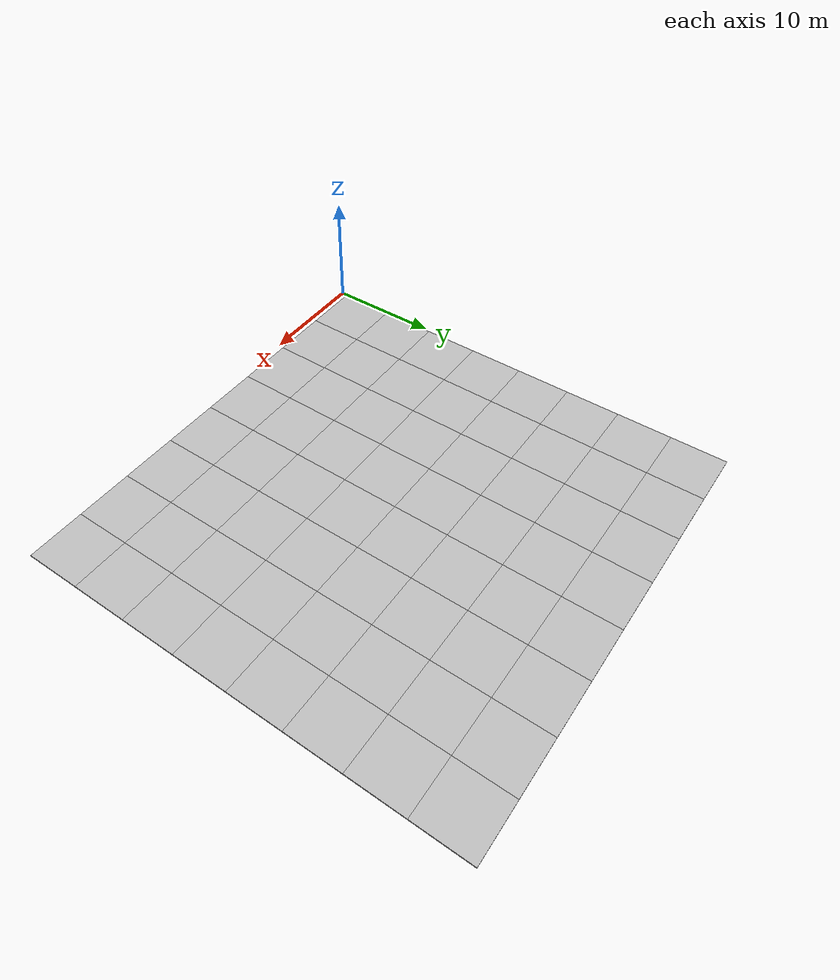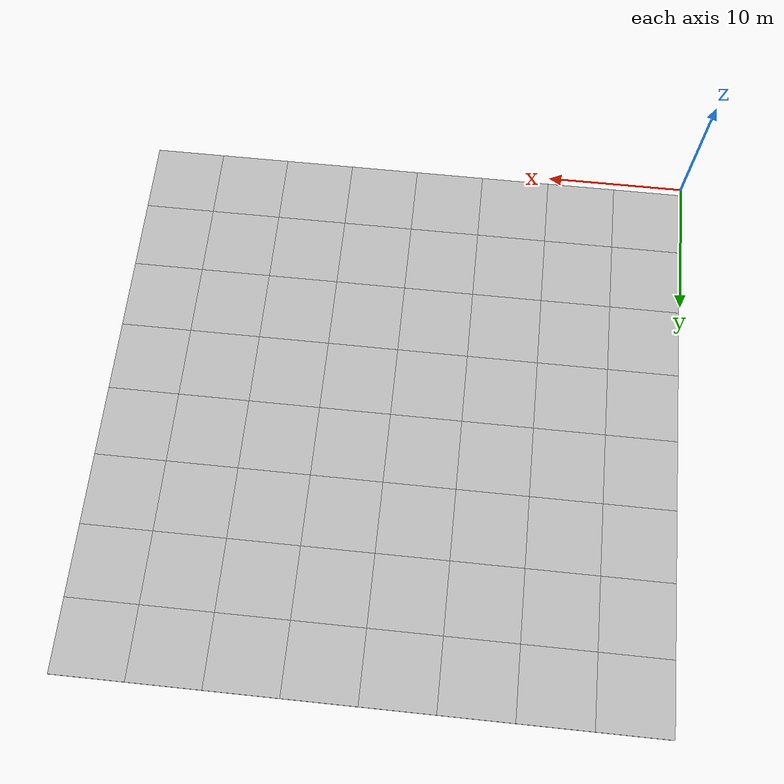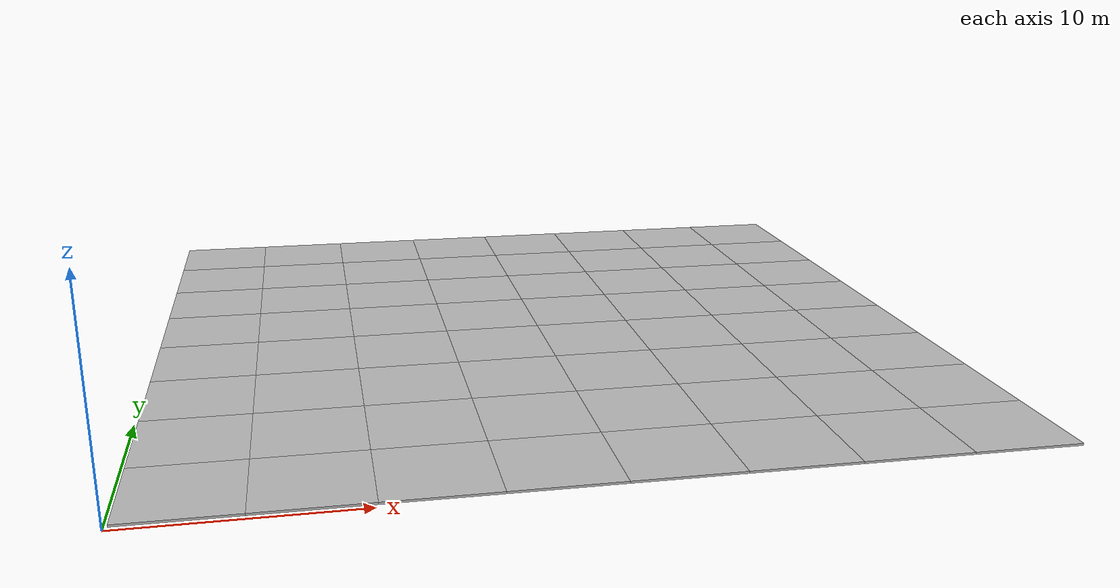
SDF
<sdf version="1.7">
 <world name="default">
  <model name="mud_plane_80x80">
   <model name="mud_plane_40x40_2">
    <model name="mud_plane_20x20">
     <model name="mud_plane">
      <static>1</static>
      <link name="link">
       <collision name="collision"><geometry><box><size>10 10 0.1</size></box></geometry></collision>
       <visual name="visual_1">
        <pose>-2.5 2.5 -0.05 0 -0 0</pose>
        <cast_shadows>0</cast_shadows>
        <geometry><box><size>5 5 0.1</size></box></geometry>
        <material>
         <script>
          <uri>model://mud_plane/materials/scripts</uri>
          <uri>model://mud_plane/materials/textures</uri>
          <name>vrc/mud</name>
         </script>
        </material>
       </visual>
       <visual name="visual_2">
        <pose>2.5 2.5 -0.05 0 -0 0</pose>
        <cast_shadows>0</cast_shadows>
        <geometry><box><size>5 5 0.1</size></box></geometry>
        <material>
         <script>
          <uri>model://mud_plane/materials/scripts</uri>
          <uri>model://mud_plane/materials/textures</uri>
          <name>vrc/mud</name>
         </script>
        </material>
       </visual>
       <visual name="visual_3">
        <pose>2.5 -2.5 -0.05 0 -0 0</pose>
        <cast_shadows>0</cast_shadows>
        <geometry><box><size>5 5 0.1</size></box></geometry>
        <material>
         <script>
          <uri>model://mud_plane/materials/scripts</uri>
          <uri>model://mud_plane/materials/textures</uri>
          <name>vrc/mud</name>
         </script>
        </material>
       </visual>
       <visual name="visual_4">
        <pose>-2.5 -2.5 -0.05 0 -0 0</pose>
        <cast_shadows>0</cast_shadows>
        <geometry><box><size>5 5 0.1</size></box></geometry>
        <material>
         <script>
          <uri>model://mud_plane/materials/scripts</uri>
          <uri>model://mud_plane/materials/textures</uri>
          <name>vrc/mud</name>
         </script>
        </material>
       </visual>
      </link>
      <pose>-4.99986 -4.99991 0 0 -0 0</pose>
     </model>
     <model name="mud_plane_0">
      <static>1</static>
      <link name="link">
       <collision name="collision"><geometry><box><size>10 10 0.1</size></box></geometry></collision>
       <visual name="visual_1">
        <pose>-2.5 2.5 -0.05 0 -0 0</pose>
        <cast_shadows>0</cast_shadows>
        <geometry><box><size>5 5 0.1</size></box></geometry>
        <material>
         <script>
          <uri>model://mud_plane/materials/scripts</uri>
          <uri>model://mud_plane/materials/textures</uri>
          <name>vrc/mud</name>
         </script>
        </material>
       </visual>
       <visual name="visual_2">
        <pose>2.5 2.5 -0.05 0 -0 0</pose>
        <cast_shadows>0</cast_shadows>
        <geometry><box><size>5 5 0.1</size></box></geometry>
        <material>
         <script>
          <uri>model://mud_plane/materials/scripts</uri>
          <uri>model://mud_plane/materials/textures</uri>
          <name>vrc/mud</name>
         </script>
        </material>
       </visual>
       <visual name="visual_3">
        <pose>2.5 -2.5 -0.05 0 -0 0</pose>
        <cast_shadows>0</cast_shadows>
        <geometry><box><size>5 5 0.1</size></box></geometry>
        <material>
         <script>
          <uri>model://mud_plane/materials/scripts</uri>
          <uri>model://mud_plane/materials/textures</uri>
          <name>vrc/mud</name>
         </script>
        </material>
       </visual>
       <visual name="visual_4">
        <pose>-2.5 -2.5 -0.05 0 -0 0</pose>
        <cast_shadows>0</cast_shadows>
        <geometry><box><size>5 5 0.1</size></box></geometry>
        <material>
         <script>
          <uri>model://mud_plane/materials/scripts</uri>
          <uri>model://mud_plane/materials/textures</uri>
          <name>vrc/mud</name>
         </script>
        </material>
       </visual>
      </link>
      <pose>-4.99946 4.99954 0 0 -0 0</pose>
     </model>
     <model name="mud_plane_1">
      <static>1</static>
      <link name="link">
       <collision name="collision"><geometry><box><size>10 10 0.1</size></box></geometry></collision>
       <visual name="visual_1">
        <pose>-2.5 2.5 -0.05 0 -0 0</pose>
        <cast_shadows>0</cast_shadows>
        <geometry><box><size>5 5 0.1</size></box></geometry>
        <material>
         <script>
          <uri>model://mud_plane/materials/scripts</uri>
          <uri>model://mud_plane/materials/textures</uri>
          <name>vrc/mud</name>
         </script>
        </material>
       </visual>
       <visual name="visual_2">
        <pose>2.5 2.5 -0.05 0 -0 0</pose>
        <cast_shadows>0</cast_shadows>
        <geometry><box><size>5 5 0.1</size></box></geometry>
        <material>
         <script>
          <uri>model://mud_plane/materials/scripts</uri>
          <uri>model://mud_plane/materials/textures</uri>
          <name>vrc/mud</name>
         </script>
        </material>
       </visual>
       <visual name="visual_3">
        <pose>2.5 -2.5 -0.05 0 -0 0</pose>
        <cast_shadows>0</cast_shadows>
        <geometry><box><size>5 5 0.1</size></box></geometry>
        <material>
         <script>
          <uri>model://mud_plane/materials/scripts</uri>
          <uri>model://mud_plane/materials/textures</uri>
          <name>vrc/mud</name>
         </script>
        </material>
       </visual>
       <visual name="visual_4">
        <pose>-2.5 -2.5 -0.05 0 -0 0</pose>
        <cast_shadows>0</cast_shadows>
        <geometry><box><size>5 5 0.1</size></box></geometry>
        <material>
         <script>
          <uri>model://mud_plane/materials/scripts</uri>
          <uri>model://mud_plane/materials/textures</uri>
          <name>vrc/mud</name>
         </script>
        </material>
       </visual>
      </link>
      <pose>4.99964 -4.99949 0 0 -0 0</pose>
     </model>
     <model name="mud_plane_2">
      <static>1</static>
      <link name="link">
       <collision name="collision"><geometry><box><size>10 10 0.1</size></box></geometry></collision>
       <visual name="visual_1">
        <pose>-2.5 2.5 -0.05 0 -0 0</pose>
        <cast_shadows>0</cast_shadows>
        <geometry><box><size>5 5 0.1</size></box></geometry>
        <material>
         <script>
          <uri>model://mud_plane/materials/scripts</uri>
          <uri>model://mud_plane/materials/textures</uri>
          <name>vrc/mud</name>
         </script>
        </material>
       </visual>
       <visual name="visual_2">
        <pose>2.5 2.5 -0.05 0 -0 0</pose>
        <cast_shadows>0</cast_shadows>
        <geometry><box><size>5 5 0.1</size></box></geometry>
        <material>
         <script>
          <uri>model://mud_plane/materials/scripts</uri>
          <uri>model://mud_plane/materials/textures</uri>
          <name>vrc/mud</name>
         </script>
        </material>
       </visual>
       <visual name="visual_3">
        <pose>2.5 -2.5 -0.05 0 -0 0</pose>
        <cast_shadows>0</cast_shadows>
        <geometry><box><size>5 5 0.1</size></box></geometry>
        <material>
         <script>
          <uri>model://mud_plane/materials/scripts</uri>
          <uri>model://mud_plane/materials/textures</uri>
          <name>vrc/mud</name>
         </script>
        </material>
       </visual>
       <visual name="visual_4">
        <pose>-2.5 -2.5 -0.05 0 -0 0</pose>
        <cast_shadows>0</cast_shadows>
        <geometry><box><size>5 5 0.1</size></box></geometry>
        <material>
         <script>
          <uri>model://mud_plane/materials/scripts</uri>
          <uri>model://mud_plane/materials/textures</uri>
          <name>vrc/mud</name>
         </script>
        </material>
       </visual>
      </link>
      <pose>4.99967 4.99986 0 0 -0 0</pose>
     </model>
     <static>0</static>
     <pose>-9.99895 9.99843 0 0 -0 0</pose>
    </model>
    <model name="mud_plane_20x20_0">
     <model name="mud_plane">
      <static>1</static>
      <link name="link">
       <collision name="collision"><geometry><box><size>10 10 0.1</size></box></geometry></collision>
       <visual name="visual_1">
        <pose>-2.5 2.5 -0.05 0 -0 0</pose>
        <cast_shadows>0</cast_shadows>
        <geometry><box><size>5 5 0.1</size></box></geometry>
        <material>
         <script>
          <uri>model://mud_plane/materials/scripts</uri>
          <uri>model://mud_plane/materials/textures</uri>
          <name>vrc/mud</name>
         </script>
        </material>
       </visual>
       <visual name="visual_2">
        <pose>2.5 2.5 -0.05 0 -0 0</pose>
        <cast_shadows>0</cast_shadows>
        <geometry><box><size>5 5 0.1</size></box></geometry>
        <material>
         <script>
          <uri>model://mud_plane/materials/scripts</uri>
          <uri>model://mud_plane/materials/textures</uri>
          <name>vrc/mud</name>
         </script>
        </material>
       </visual>
       <visual name="visual_3">
        <pose>2.5 -2.5 -0.05 0 -0 0</pose>
        <cast_shadows>0</cast_shadows>
        <geometry><box><size>5 5 0.1</size></box></geometry>
        <material>
         <script>
          <uri>model://mud_plane/materials/scripts</uri>
          <uri>model://mud_plane/materials/textures</uri>
          <name>vrc/mud</name>
         </script>
        </material>
       </visual>
       <visual name="visual_4">
        <pose>-2.5 -2.5 -0.05 0 -0 0</pose>
        <cast_shadows>0</cast_shadows>
        <geometry><box><size>5 5 0.1</size></box></geometry>
        <material>
         <script>
          <uri>model://mud_plane/materials/scripts</uri>
          <uri>model://mud_plane/materials/textures</uri>
          <name>vrc/mud</name>
         </script>
        </material>
       </visual>
      </link>
      <pose>-4.99986 -4.99991 0 0 -0 0</pose>
     </model>
     <model name="mud_plane_0">
      <static>1</static>
      <link name="link">
       <collision name="collision"><geometry><box><size>10 10 0.1</size></box></geometry></collision>
       <visual name="visual_1">
        <pose>-2.5 2.5 -0.05 0 -0 0</pose>
        <cast_shadows>0</cast_shadows>
        <geometry><box><size>5 5 0.1</size></box></geometry>
        <material>
         <script>
          <uri>model://mud_plane/materials/scripts</uri>
          <uri>model://mud_plane/materials/textures</uri>
          <name>vrc/mud</name>
         </script>
        </material>
       </visual>
       <visual name="visual_2">
        <pose>2.5 2.5 -0.05 0 -0 0</pose>
        <cast_shadows>0</cast_shadows>
        <geometry><box><size>5 5 0.1</size></box></geometry>
        <material>
         <script>
          <uri>model://mud_plane/materials/scripts</uri>
          <uri>model://mud_plane/materials/textures</uri>
          <name>vrc/mud</name>
         </script>
        </material>
       </visual>
       <visual name="visual_3">
        <pose>2.5 -2.5 -0.05 0 -0 0</pose>
        <cast_shadows>0</cast_shadows>
        <geometry><box><size>5 5 0.1</size></box></geometry>
        <material>
         <script>
          <uri>model://mud_plane/materials/scripts</uri>
          <uri>model://mud_plane/materials/textures</uri>
          <name>vrc/mud</name>
         </script>
        </material>
       </visual>
       <visual name="visual_4">
        <pose>-2.5 -2.5 -0.05 0 -0 0</pose>
        <cast_shadows>0</cast_shadows>
        <geometry><box><size>5 5 0.1</size></box></geometry>
        <material>
         <script>
          <uri>model://mud_plane/materials/scripts</uri>
          <uri>model://mud_plane/materials/textures</uri>
          <name>vrc/mud</name>
         </script>
        </material>
       </visual>
      </link>
      <pose>-4.99946 4.99954 0 0 -0 0</pose>
     </model>
     <model name="mud_plane_1">
      <static>1</static>
      <link name="link">
       <collision name="collision"><geometry><box><size>10 10 0.1</size></box></geometry></collision>
       <visual name="visual_1">
        <pose>-2.5 2.5 -0.05 0 -0 0</pose>
        <cast_shadows>0</cast_shadows>
        <geometry><box><size>5 5 0.1</size></box></geometry>
        <material>
         <script>
          <uri>model://mud_plane/materials/scripts</uri>
          <uri>model://mud_plane/materials/textures</uri>
          <name>vrc/mud</name>
         </script>
        </material>
       </visual>
       <visual name="visual_2">
        <pose>2.5 2.5 -0.05 0 -0 0</pose>
        <cast_shadows>0</cast_shadows>
        <geometry><box><size>5 5 0.1</size></box></geometry>
        <material>
         <script>
          <uri>model://mud_plane/materials/scripts</uri>
          <uri>model://mud_plane/materials/textures</uri>
          <name>vrc/mud</name>
         </script>
        </material>
       </visual>
       <visual name="visual_3">
        <pose>2.5 -2.5 -0.05 0 -0 0</pose>
        <cast_shadows>0</cast_shadows>
        <geometry><box><size>5 5 0.1</size></box></geometry>
        <material>
         <script>
          <uri>model://mud_plane/materials/scripts</uri>
          <uri>model://mud_plane/materials/textures</uri>
          <name>vrc/mud</name>
         </script>
        </material>
       </visual>
       <visual name="visual_4">
        <pose>-2.5 -2.5 -0.05 0 -0 0</pose>
        <cast_shadows>0</cast_shadows>
        <geometry><box><size>5 5 0.1</size></box></geometry>
        <material>
         <script>
          <uri>model://mud_plane/materials/scripts</uri>
          <uri>model://mud_plane/materials/textures</uri>
          <name>vrc/mud</name>
         </script>
        </material>
       </visual>
      </link>
      <pose>4.99964 -4.99949 0 0 -0 0</pose>
     </model>
     <model name="mud_plane_2">
      <static>1</static>
      <link name="link">
       <collision name="collision"><geometry><box><size>10 10 0.1</size></box></geometry></collision>
       <visual name="visual_1">
        <pose>-2.5 2.5 -0.05 0 -0 0</pose>
        <cast_shadows>0</cast_shadows>
        <geometry><box><size>5 5 0.1</size></box></geometry>
        <material>
         <script>
          <uri>model://mud_plane/materials/scripts</uri>
          <uri>model://mud_plane/materials/textures</uri>
          <name>vrc/mud</name>
         </script>
        </material>
       </visual>
       <visual name="visual_2">
        <pose>2.5 2.5 -0.05 0 -0 0</pose>
        <cast_shadows>0</cast_shadows>
        <geometry><box><size>5 5 0.1</size></box></geometry>
        <material>
         <script>
          <uri>model://mud_plane/materials/scripts</uri>
          <uri>model://mud_plane/materials/textures</uri>
          <name>vrc/mud</name>
         </script>
        </material>
       </visual>
       <visual name="visual_3">
        <pose>2.5 -2.5 -0.05 0 -0 0</pose>
        <cast_shadows>0</cast_shadows>
        <geometry><box><size>5 5 0.1</size></box></geometry>
        <material>
         <script>
          <uri>model://mud_plane/materials/scripts</uri>
          <uri>model://mud_plane/materials/textures</uri>
          <name>vrc/mud</name>
         </script>
        </material>
       </visual>
       <visual name="visual_4">
        <pose>-2.5 -2.5 -0.05 0 -0 0</pose>
        <cast_shadows>0</cast_shadows>
        <geometry><box><size>5 5 0.1</size></box></geometry>
        <material>
         <script>
          <uri>model://mud_plane/materials/scripts</uri>
          <uri>model://mud_plane/materials/textures</uri>
          <name>vrc/mud</name>
         </script>
        </material>
       </visual>
      </link>
      <pose>4.99967 4.99986 0 0 -0 0</pose>
     </model>
     <static>0</static>
     <pose>9.99933 9.9997 0 0 -0 0</pose>
    </model>
    <model name="mud_plane_20x20_1">
     <model name="mud_plane">
      <static>1</static>
      <link name="link">
       <collision name="collision"><geometry><box><size>10 10 0.1</size></box></geometry></collision>
       <visual name="visual_1">
        <pose>-2.5 2.5 -0.05 0 -0 0</pose>
        <cast_shadows>0</cast_shadows>
        <geometry><box><size>5 5 0.1</size></box></geometry>
        <material>
         <script>
          <uri>model://mud_plane/materials/scripts</uri>
          <uri>model://mud_plane/materials/textures</uri>
          <name>vrc/mud</name>
         </script>
        </material>
       </visual>
       <visual name="visual_2">
        <pose>2.5 2.5 -0.05 0 -0 0</pose>
        <cast_shadows>0</cast_shadows>
        <geometry><box><size>5 5 0.1</size></box></geometry>
        <material>
         <script>
          <uri>model://mud_plane/materials/scripts</uri>
          <uri>model://mud_plane/materials/textures</uri>
          <name>vrc/mud</name>
         </script>
        </material>
       </visual>
       <visual name="visual_3">
        <pose>2.5 -2.5 -0.05 0 -0 0</pose>
        <cast_shadows>0</cast_shadows>
        <geometry><box><size>5 5 0.1</size></box></geometry>
        <material>
         <script>
          <uri>model://mud_plane/materials/scripts</uri>
          <uri>model://mud_plane/materials/textures</uri>
          <name>vrc/mud</name>
         </script>
        </material>
       </visual>
       <visual name="visual_4">
        <pose>-2.5 -2.5 -0.05 0 -0 0</pose>
        <cast_shadows>0</cast_shadows>
        <geometry><box><size>5 5 0.1</size></box></geometry>
        <material>
         <script>
          <uri>model://mud_plane/materials/scripts</uri>
          <uri>model://mud_plane/materials/textures</uri>
          <name>vrc/mud</name>
         </script>
        </material>
       </visual>
      </link>
      <pose>-4.99986 -4.99991 0 0 -0 0</pose>
     </model>
     <model name="mud_plane_0">
      <static>1</static>
      <link name="link">
       <collision name="collision"><geometry><box><size>10 10 0.1</size></box></geometry></collision>
       <visual name="visual_1">
        <pose>-2.5 2.5 -0.05 0 -0 0</pose>
        <cast_shadows>0</cast_shadows>
        <geometry><box><size>5 5 0.1</size></box></geometry>
        <material>
         <script>
          <uri>model://mud_plane/materials/scripts</uri>
          <uri>model://mud_plane/materials/textures</uri>
          <name>vrc/mud</name>
         </script>
        </material>
       </visual>
       <visual name="visual_2">
        <pose>2.5 2.5 -0.05 0 -0 0</pose>
        <cast_shadows>0</cast_shadows>
        <geometry><box><size>5 5 0.1</size></box></geometry>
        <material>
         <script>
          <uri>model://mud_plane/materials/scripts</uri>
          <uri>model://mud_plane/materials/textures</uri>
          <name>vrc/mud</name>
         </script>
        </material>
       </visual>
       <visual name="visual_3">
        <pose>2.5 -2.5 -0.05 0 -0 0</pose>
        <cast_shadows>0</cast_shadows>
        <geometry><box><size>5 5 0.1</size></box></geometry>
        <material>
         <script>
          <uri>model://mud_plane/materials/scripts</uri>
          <uri>model://mud_plane/materials/textures</uri>
          <name>vrc/mud</name>
         </script>
        </material>
       </visual>
       <visual name="visual_4">
        <pose>-2.5 -2.5 -0.05 0 -0 0</pose>
        <cast_shadows>0</cast_shadows>
        <geometry><box><size>5 5 0.1</size></box></geometry>
        <material>
         <script>
          <uri>model://mud_plane/materials/scripts</uri>
          <uri>model://mud_plane/materials/textures</uri>
          <name>vrc/mud</name>
         </script>
        </material>
       </visual>
      </link>
      <pose>-4.99946 4.99954 0 0 -0 0</pose>
     </model>
     <model name="mud_plane_1">
      <static>1</static>
      <link name="link">
       <collision name="collision"><geometry><box><size>10 10 0.1</size></box></geometry></collision>
       <visual name="visual_1">
        <pose>-2.5 2.5 -0.05 0 -0 0</pose>
        <cast_shadows>0</cast_shadows>
        <geometry><box><size>5 5 0.1</size></box></geometry>
        <material>
         <script>
          <uri>model://mud_plane/materials/scripts</uri>
          <uri>model://mud_plane/materials/textures</uri>
          <name>vrc/mud</name>
         </script>
        </material>
       </visual>
       <visual name="visual_2">
        <pose>2.5 2.5 -0.05 0 -0 0</pose>
        <cast_shadows>0</cast_shadows>
        <geometry><box><size>5 5 0.1</size></box></geometry>
        <material>
         <script>
          <uri>model://mud_plane/materials/scripts</uri>
          <uri>model://mud_plane/materials/textures</uri>
          <name>vrc/mud</name>
         </script>
        </material>
       </visual>
       <visual name="visual_3">
        <pose>2.5 -2.5 -0.05 0 -0 0</pose>
        <cast_shadows>0</cast_shadows>
        <geometry><box><size>5 5 0.1</size></box></geometry>
        <material>
         <script>
          <uri>model://mud_plane/materials/scripts</uri>
          <uri>model://mud_plane/materials/textures</uri>
          <name>vrc/mud</name>
         </script>
        </material>
       </visual>
       <visual name="visual_4">
        <pose>-2.5 -2.5 -0.05 0 -0 0</pose>
        <cast_shadows>0</cast_shadows>
        <geometry><box><size>5 5 0.1</size></box></geometry>
        <material>
         <script>
          <uri>model://mud_plane/materials/scripts</uri>
          <uri>model://mud_plane/materials/textures</uri>
          <name>vrc/mud</name>
         </script>
        </material>
       </visual>
      </link>
      <pose>4.99964 -4.99949 0 0 -0 0</pose>
     </model>
     <model name="mud_plane_2">
      <static>1</static>
      <link name="link">
       <collision name="collision"><geometry><box><size>10 10 0.1</size></box></geometry></collision>
       <visual name="visual_1">
        <pose>-2.5 2.5 -0.05 0 -0 0</pose>
        <cast_shadows>0</cast_shadows>
        <geometry><box><size>5 5 0.1</size></box></geometry>
        <material>
         <script>
          <uri>model://mud_plane/materials/scripts</uri>
          <uri>model://mud_plane/materials/textures</uri>
          <name>vrc/mud</name>
         </script>
        </material>
       </visual>
       <visual name="visual_2">
        <pose>2.5 2.5 -0.05 0 -0 0</pose>
        <cast_shadows>0</cast_shadows>
        <geometry><box><size>5 5 0.1</size></box></geometry>
        <material>
         <script>
          <uri>model://mud_plane/materials/scripts</uri>
          <uri>model://mud_plane/materials/textures</uri>
          <name>vrc/mud</name>
         </script>
        </material>
       </visual>
       <visual name="visual_3">
        <pose>2.5 -2.5 -0.05 0 -0 0</pose>
        <cast_shadows>0</cast_shadows>
        <geometry><box><size>5 5 0.1</size></box></geometry>
        <material>
         <script>
          <uri>model://mud_plane/materials/scripts</uri>
          <uri>model://mud_plane/materials/textures</uri>
          <name>vrc/mud</name>
         </script>
        </material>
       </visual>
       <visual name="visual_4">
        <pose>-2.5 -2.5 -0.05 0 -0 0</pose>
        <cast_shadows>0</cast_shadows>
        <geometry><box><size>5 5 0.1</size></box></geometry>
        <material>
         <script>
          <uri>model://mud_plane/materials/scripts</uri>
          <uri>model://mud_plane/materials/textures</uri>
          <name>vrc/mud</name>
         </script>
        </material>
       </visual>
      </link>
      <pose>4.99967 4.99986 0 0 -0 0</pose>
     </model>
     <static>0</static>
     <pose>9.9993 -9.99877 0 0 -0 0</pose>
    </model>
    <model name="mud_plane_20x20_2">
     <model name="mud_plane">
      <static>1</static>
      <link name="link">
       <collision name="collision"><geometry><box><size>10 10 0.1</size></box></geometry></collision>
       <visual name="visual_1">
        <pose>-2.5 2.5 -0.05 0 -0 0</pose>
        <cast_shadows>0</cast_shadows>
        <geometry><box><size>5 5 0.1</size></box></geometry>
        <material>
         <script>
          <uri>model://mud_plane/materials/scripts</uri>
          <uri>model://mud_plane/materials/textures</uri>
          <name>vrc/mud</name>
         </script>
        </material>
       </visual>
       <visual name="visual_2">
        <pose>2.5 2.5 -0.05 0 -0 0</pose>
        <cast_shadows>0</cast_shadows>
        <geometry><box><size>5 5 0.1</size></box></geometry>
        <material>
         <script>
          <uri>model://mud_plane/materials/scripts</uri>
          <uri>model://mud_plane/materials/textures</uri>
          <name>vrc/mud</name>
         </script>
        </material>
       </visual>
       <visual name="visual_3">
        <pose>2.5 -2.5 -0.05 0 -0 0</pose>
        <cast_shadows>0</cast_shadows>
        <geometry><box><size>5 5 0.1</size></box></geometry>
        <material>
         <script>
          <uri>model://mud_plane/materials/scripts</uri>
          <uri>model://mud_plane/materials/textures</uri>
          <name>vrc/mud</name>
         </script>
        </material>
       </visual>
       <visual name="visual_4">
        <pose>-2.5 -2.5 -0.05 0 -0 0</pose>
        <cast_shadows>0</cast_shadows>
        <geometry><box><size>5 5 0.1</size></box></geometry>
        <material>
         <script>
          <uri>model://mud_plane/materials/scripts</uri>
          <uri>model://mud_plane/materials/textures</uri>
          <name>vrc/mud</name>
         </script>
        </material>
       </visual>
      </link>
      <pose>-4.99986 -4.99991 0 0 -0 0</pose>
     </model>
     <model name="mud_plane_0">
      <static>1</static>
      <link name="link">
       <collision name="collision"><geometry><box><size>10 10 0.1</size></box></geometry></collision>
       <visual name="visual_1">
        <pose>-2.5 2.5 -0.05 0 -0 0</pose>
        <cast_shadows>0</cast_shadows>
        <geometry><box><size>5 5 0.1</size></box></geometry>
        <material>
         <script>
          <uri>model://mud_plane/materials/scripts</uri>
          <uri>model://mud_plane/materials/textures</uri>
          <name>vrc/mud</name>
         </script>
        </material>
       </visual>
       <visual name="visual_2">
        <pose>2.5 2.5 -0.05 0 -0 0</pose>
        <cast_shadows>0</cast_shadows>
        <geometry><box><size>5 5 0.1</size></box></geometry>
        <material>
         <script>
          <uri>model://mud_plane/materials/scripts</uri>
          <uri>model://mud_plane/materials/textures</uri>
          <name>vrc/mud</name>
         </script>
        </material>
       </visual>
       <visual name="visual_3">
        <pose>2.5 -2.5 -0.05 0 -0 0</pose>
        <cast_shadows>0</cast_shadows>
        <geometry><box><size>5 5 0.1</size></box></geometry>
        <material>
         <script>
          <uri>model://mud_plane/materials/scripts</uri>
          <uri>model://mud_plane/materials/textures</uri>
          <name>vrc/mud</name>
         </script>
        </material>
       </visual>
       <visual name="visual_4">
        <pose>-2.5 -2.5 -0.05 0 -0 0</pose>
        <cast_shadows>0</cast_shadows>
        <geometry><box><size>5 5 0.1</size></box></geometry>
        <material>
         <script>
          <uri>model://mud_plane/materials/scripts</uri>
          <uri>model://mud_plane/materials/textures</uri>
          <name>vrc/mud</name>
         </script>
        </material>
       </visual>
      </link>
      <pose>-4.99946 4.99954 0 0 -0 0</pose>
     </model>
     <model name="mud_plane_1">
      <static>1</static>
      <link name="link">
       <collision name="collision"><geometry><box><size>10 10 0.1</size></box></geometry></collision>
       <visual name="visual_1">
        <pose>-2.5 2.5 -0.05 0 -0 0</pose>
        <cast_shadows>0</cast_shadows>
        <geometry><box><size>5 5 0.1</size></box></geometry>
        <material>
         <script>
          <uri>model://mud_plane/materials/scripts</uri>
          <uri>model://mud_plane/materials/textures</uri>
          <name>vrc/mud</name>
         </script>
        </material>
       </visual>
       <visual name="visual_2">
        <pose>2.5 2.5 -0.05 0 -0 0</pose>
        <cast_shadows>0</cast_shadows>
        <geometry><box><size>5 5 0.1</size></box></geometry>
        <material>
         <script>
          <uri>model://mud_plane/materials/scripts</uri>
          <uri>model://mud_plane/materials/textures</uri>
          <name>vrc/mud</name>
         </script>
        </material>
       </visual>
       <visual name="visual_3">
        <pose>2.5 -2.5 -0.05 0 -0 0</pose>
        <cast_shadows>0</cast_shadows>
        <geometry><box><size>5 5 0.1</size></box></geometry>
        <material>
         <script>
          <uri>model://mud_plane/materials/scripts</uri>
          <uri>model://mud_plane/materials/textures</uri>
          <name>vrc/mud</name>
         </script>
        </material>
       </visual>
       <visual name="visual_4">
        <pose>-2.5 -2.5 -0.05 0 -0 0</pose>
        <cast_shadows>0</cast_shadows>
        <geometry><box><size>5 5 0.1</size></box></geometry>
        <material>
         <script>
          <uri>model://mud_plane/materials/scripts</uri>
          <uri>model://mud_plane/materials/textures</uri>
          <name>vrc/mud</name>
         </script>
        </material>
       </visual>
      </link>
      <pose>4.99964 -4.99949 0 0 -0 0</pose>
     </model>
     <model name="mud_plane_2">
      <static>1</static>
      <link name="link">
       <collision name="collision"><geometry><box><size>10 10 0.1</size></box></geometry></collision>
       <visual name="visual_1">
        <pose>-2.5 2.5 -0.05 0 -0 0</pose>
        <cast_shadows>0</cast_shadows>
        <geometry><box><size>5 5 0.1</size></box></geometry>
        <material>
         <script>
          <uri>model://mud_plane/materials/scripts</uri>
          <uri>model://mud_plane/materials/textures</uri>
          <name>vrc/mud</name>
         </script>
        </material>
       </visual>
       <visual name="visual_2">
        <pose>2.5 2.5 -0.05 0 -0 0</pose>
        <cast_shadows>0</cast_shadows>
        <geometry><box><size>5 5 0.1</size></box></geometry>
        <material>
         <script>
          <uri>model://mud_plane/materials/scripts</uri>
          <uri>model://mud_plane/materials/textures</uri>
          <name>vrc/mud</name>
         </script>
        </material>
       </visual>
       <visual name="visual_3">
        <pose>2.5 -2.5 -0.05 0 -0 0</pose>
        <cast_shadows>0</cast_shadows>
        <geometry><box><size>5 5 0.1</size></box></geometry>
        <material>
         <script>
          <uri>model://mud_plane/materials/scripts</uri>
          <uri>model://mud_plane/materials/textures</uri>
          <name>vrc/mud</name>
         </script>
        </material>
       </visual>
       <visual name="visual_4">
        <pose>-2.5 -2.5 -0.05 0 -0 0</pose>
        <cast_shadows>0</cast_shadows>
        <geometry><box><size>5 5 0.1</size></box></geometry>
        <material>
         <script>
          <uri>model://mud_plane/materials/scripts</uri>
          <uri>model://mud_plane/materials/textures</uri>
          <name>vrc/mud</name>
         </script>
        </material>
       </visual>
      </link>
      <pose>4.99967 4.99986 0 0 -0 0</pose>
     </model>
     <static>0</static>
     <pose>-9.99969 -9.99935 0 0 -0 0</pose>
    </model>
    <static>0</static>
    <pose>-19.9989 -19.9993 0 0 -0 0</pose>
   </model>
   <static>0</static>
   <pose>40.1011 40.4629 0 0 -0 0</pose>
  </model>
 </world>
</sdf>
